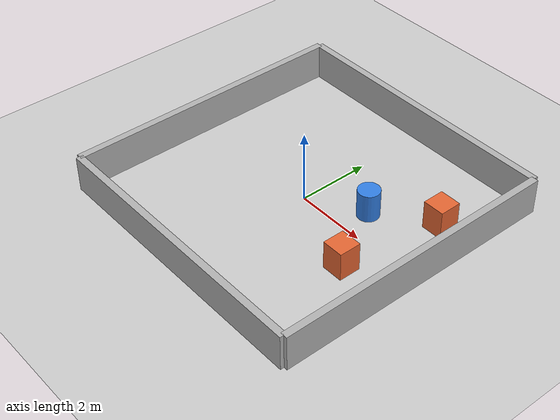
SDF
<?xml version="1.0"?>
<sdf version="1.6">
  <world name="lidar_avoid_world">

    <include>
      <uri>model://sun</uri>
    </include>
    <include>
      <uri>model://ground_plane</uri>
    </include>

    <physics type="ode">
      <max_step_size>0.001</max_step_size>
      <real_time_factor>1.0</real_time_factor>
      <real_time_update_rate>1000</real_time_update_rate>
    </physics>

    <!-- 四面围墙，形成封闭场地 -->
    <model name="wall_north">
      <static>true</static>
      <pose>4 0 0.5 0 0 0</pose>
      <link name="link">
        <collision name="collision">
          <geometry>
            <box><size>0.2 8 1.0</size></box>
          </geometry>
        </collision>
        <visual name="visual">
          <geometry>
            <box><size>0.2 8 1.0</size></box>
          </geometry>
          <material>
            <ambient>0.7 0.7 0.7 1</ambient>
            <diffuse>0.7 0.7 0.7 1</diffuse>
          </material>
        </visual>
      </link>
    </model>

    <model name="wall_south">
      <static>true</static>
      <pose>-4 0 0.5 0 0 0</pose>
      <link name="link">
        <collision name="collision">
          <geometry>
            <box><size>0.2 8 1.0</size></box>
          </geometry>
        </collision>
        <visual name="visual">
          <geometry>
            <box><size>0.2 8 1.0</size></box>
          </geometry>
          <material>
            <ambient>0.7 0.7 0.7 1</ambient>
            <diffuse>0.7 0.7 0.7 1</diffuse>
          </material>
        </visual>
      </link>
    </model>

    <model name="wall_east">
      <static>true</static>
      <pose>0 4 0.5 0 0 0</pose>
      <link name="link">
        <collision name="collision">
          <geometry>
            <box><size>8 0.2 1.0</size></box>
          </geometry>
        </collision>
        <visual name="visual">
          <geometry>
            <box><size>8 0.2 1.0</size></box>
          </geometry>
          <material>
            <ambient>0.7 0.7 0.7 1</ambient>
            <diffuse>0.7 0.7 0.7 1</diffuse>
          </material>
        </visual>
      </link>
    </model>

    <model name="wall_west">
      <static>true</static>
      <pose>0 -4 0.5 0 0 0</pose>
      <link name="link">
        <collision name="collision">
          <geometry>
            <box><size>8 0.2 1.0</size></box>
          </geometry>
        </collision>
        <visual name="visual">
          <geometry>
            <box><size>8 0.2 1.0</size></box>
          </geometry>
          <material>
            <ambient>0.7 0.7 0.7 1</ambient>
            <diffuse>0.7 0.7 0.7 1</diffuse>
          </material>
        </visual>
      </link>
    </model>

    <!-- 场内障碍柱，用于验证避障与脱困 -->
    <model name="obstacle_1">
      <static>true</static>
      <pose>1.5 0.8 0.4 0 0 0</pose>
      <link name="link">
        <collision name="collision">
          <geometry>
            <cylinder><radius>0.3</radius><length>0.8</length></cylinder>
          </geometry>
        </collision>
        <visual name="visual">
          <geometry>
            <cylinder><radius>0.3</radius><length>0.8</length></cylinder>
          </geometry>
          <material>
            <ambient>0.2 0.5 0.9 1</ambient>
            <diffuse>0.2 0.5 0.9 1</diffuse>
          </material>
        </visual>
      </link>
    </model>

    <model name="obstacle_2">
      <static>true</static>
      <pose>2.5 -1.0 0.4 0 0 0</pose>
      <link name="link">
        <collision name="collision">
          <geometry>
            <box><size>0.6 0.6 0.8</size></box>
          </geometry>
        </collision>
        <visual name="visual">
          <geometry>
            <box><size>0.6 0.6 0.8</size></box>
          </geometry>
          <material>
            <ambient>0.9 0.4 0.2 1</ambient>
            <diffuse>0.9 0.4 0.2 1</diffuse>
          </material>
        </visual>
      </link>
    </model>

    <model name="obstacle_3">
      <static>true</static>
      <pose>3.0 1.8 0.4 0 0 0</pose>
      <link name="link">
        <collision name="collision">
          <geometry>
            <box><size>0.6 0.6 0.8</size></box>
          </geometry>
        </collision>
        <visual name="visual">
          <geometry>
            <box><size>0.6 0.6 0.8</size></box>
          </geometry>
          <material>
            <ambient>0.9 0.4 0.2 1</ambient>
            <diffuse>0.9 0.4 0.2 1</diffuse>
          </material>
        </visual>
      </link>
    </model>

  </world>
</sdf>
